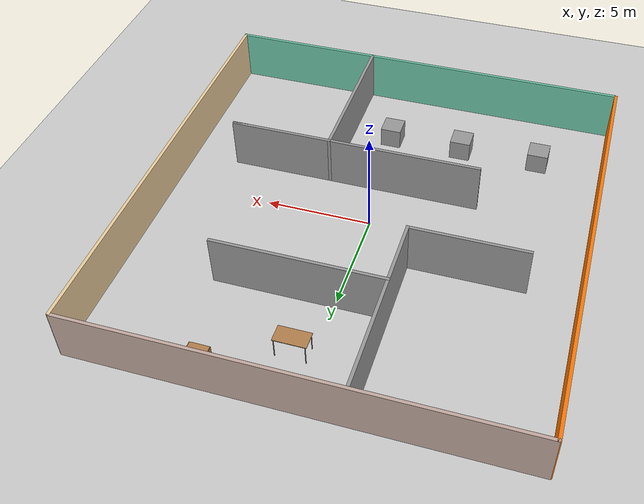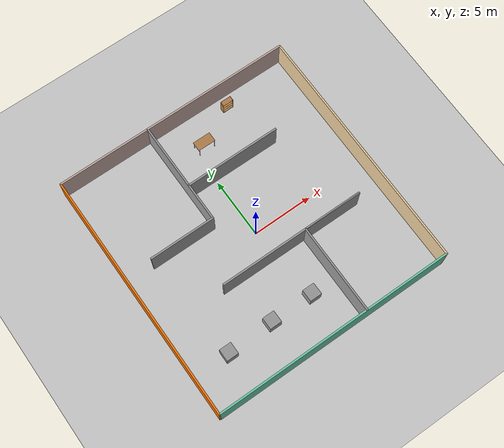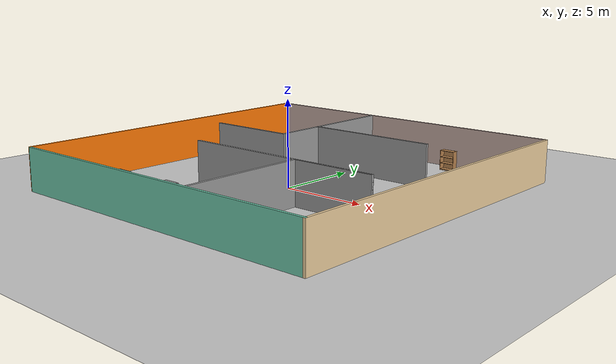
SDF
<sdf version="1.7">
 <world name="default">
  <light name="sun" type="directional">
   <pose>0 0 10 0 -0 0</pose>
   <diffuse>0.8 0.8 0.8 1</diffuse>
   <specular>0.2 0.2 0.2 1</specular>
   <attenuation>
    <range>1000</range>
    <constant>0.9</constant>
    <linear>0.01</linear>
    <quadratic>0.001</quadratic>
   </attenuation>
   <direction>-0.5 0.1 -0.9</direction>
   <spot><inner_angle>0</inner_angle><outer_angle>0</outer_angle><falloff>0</falloff></spot>
  </light>
  <model name="ground_plane">
   <static>1</static>
   <link name="link">
    <collision name="collision">
     <geometry><plane><normal>0 0 1</normal><size>100 100</size></plane></geometry>
     <surface>
      <contact><collide_bitmask>65535</collide_bitmask></contact>
      <friction><ode><mu>100</mu><mu2>50</mu2></ode></friction>
     </surface>
    </collision>
    <visual name="visual">
     <cast_shadows>0</cast_shadows>
     <geometry><plane><normal>0 0 1</normal><size>100 100</size></plane></geometry>
     <material>
      <script><uri>file://media/materials/scripts/gazebo.material</uri><name>Gazebo/Grey</name></script>
     </material>
    </visual>
   </link>
  </model>
  <gravity>0 0 -9.8</gravity>
  <magnetic_field>6e-06 2.3e-05 -4.2e-05</magnetic_field>
  <atmosphere type="adiabatic"/>
  <physics type="ode">
   <max_step_size>0.001</max_step_size>
   <real_time_factor>1</real_time_factor>
   <real_time_update_rate>1000</real_time_update_rate>
  </physics>
  <scene><ambient>0.4 0.4 0.4 1</ambient><background>0.7 0.7 0.7 1</background><shadows>1</shadows></scene>
  <spherical_coordinates>
   <surface_model>EARTH_WGS84</surface_model>
   <latitude_deg>0</latitude_deg>
   <longitude_deg>0</longitude_deg>
   <elevation>0</elevation>
   <heading_deg>0</heading_deg>
  </spherical_coordinates>
  <model name="updated_world">
   <pose>-0.057688 0.485307 0 0 -0 0</pose>
   <link name="Wall_0">
    <collision name="Wall_0_Collision">
     <geometry><box><size>20 0.15 2.5</size></box></geometry>
     <pose>0 0 1.25 0 -0 0</pose>
    </collision>
    <visual name="Wall_0_Visual">
     <pose>0 0 1.25 0 -0 0</pose>
     <geometry><box><size>20 0.15 2.5</size></box></geometry>
     <material>
      <script><uri>file://media/materials/scripts/gazebo.material</uri><name>Gazebo/Grey</name></script>
      <ambient>0.435294 0.796078 0.67451 1</ambient>
     </material>
     <meta><layer>0</layer></meta>
    </visual>
    <pose>0.049867 -10.3233 0 0 -0 3.14159</pose>
   </link>
   <link name="Wall_14">
    <collision name="Wall_14_Collision">
     <geometry><box><size>8.75 0.15 2.5</size></box></geometry>
     <pose>0 0 1.25 0 -0 0</pose>
    </collision>
    <visual name="Wall_14_Visual">
     <pose>0 0 1.25 0 -0 0</pose>
     <geometry><box><size>8.75 0.15 2.5</size></box></geometry>
     <material>
      <script><uri>file://media/materials/scripts/gazebo.material</uri><name>Gazebo/Grey</name></script>
      <ambient>1 1 1 1</ambient>
     </material>
     <meta><layer>0</layer></meta>
    </visual>
    <pose>-2.27724 5.9639 0 0 -0 -1.5708</pose>
   </link>
   <link name="Wall_15">
    <collision name="Wall_15_Collision">
     <geometry><box><size>5.5 0.15 2.5</size></box></geometry>
     <pose>0 0 1.25 0 -0 0</pose>
    </collision>
    <visual name="Wall_15_Visual">
     <pose>0 0 1.25 0 -0 0</pose>
     <geometry><box><size>5.5 0.15 2.5</size></box></geometry>
     <material>
      <script><uri>file://media/materials/scripts/gazebo.material</uri><name>Gazebo/Grey</name></script>
      <ambient>1 1 1 1</ambient>
     </material>
     <meta><layer>0</layer></meta>
    </visual>
    <pose>-4.95224 1.6639 0 0 -0 3.14159</pose>
   </link>
   <link name="Wall_17">
    <collision name="Wall_17_Collision">
     <geometry><box><size>7.5 0.15 2.5</size></box></geometry>
     <pose>0 0 1.25 0 -0 0</pose>
    </collision>
    <visual name="Wall_17_Visual">
     <pose>0 0 1.25 0 -0 0</pose>
     <geometry><box><size>7.5 0.15 2.5</size></box></geometry>
     <material>
      <script><uri>file://media/materials/scripts/gazebo.material</uri><name>Gazebo/Grey</name></script>
      <ambient>1 1 1 1</ambient>
     </material>
     <meta><layer>0</layer></meta>
    </visual>
    <pose>2.76804 -6.61141 0 0 -0 1.5708</pose>
   </link>
   <link name="Wall_18">
    <collision name="Wall_18_Collision">
     <geometry><box><size>5 0.15 2.5</size></box></geometry>
     <pose>0 0 1.25 0 -0 0</pose>
    </collision>
    <visual name="Wall_18_Visual">
     <pose>0 0 1.25 0 -0 0</pose>
     <geometry><box><size>5 0.15 2.5</size></box></geometry>
     <material>
      <script><uri>file://media/materials/scripts/gazebo.material</uri><name>Gazebo/Grey</name></script>
      <ambient>1 1 1 1</ambient>
     </material>
     <meta><layer>0</layer></meta>
    </visual>
    <pose>5.19304 -2.93641 0 0 -0 0</pose>
   </link>
   <link name="Wall_19">
    <collision name="Wall_19_Collision">
     <geometry><box><size>12.25 0.15 2.5</size></box></geometry>
     <pose>0 0 1.25 0 -0 0</pose>
    </collision>
    <visual name="Wall_19_Visual">
     <pose>0 0 1.25 0 -0 0</pose>
     <geometry><box><size>12.25 0.15 2.5</size></box></geometry>
     <material>
      <script><uri>file://media/materials/scripts/gazebo.material</uri><name>Gazebo/Grey</name></script>
      <ambient>1 1 1 1</ambient>
     </material>
     <meta><layer>0</layer></meta>
    </visual>
    <pose>1.56804 -2.93641 0 0 -0 3.14159</pose>
   </link>
   <link name="Wall_21">
    <collision name="Wall_21_Collision">
     <geometry><box><size>8 0.15 2.5</size></box></geometry>
     <pose>0 0 1.25 0 -0 0</pose>
    </collision>
    <visual name="Wall_21_Visual">
     <pose>0 0 1.25 0 -0 0</pose>
     <geometry><box><size>8 0.15 2.5</size></box></geometry>
     <material>
      <script><uri>file://media/materials/scripts/gazebo.material</uri><name>Gazebo/Grey</name></script>
      <ambient>1 1 1 1</ambient>
     </material>
     <meta><layer>0</layer></meta>
    </visual>
    <pose>1.64776 4.78792 0 0 -0 0</pose>
   </link>
   <link name="Wall_3">
    <collision name="Wall_3_Collision">
     <geometry><box><size>20.75 0.15 2.5</size></box></geometry>
     <pose>0 0 1.25 0 -0 0</pose>
    </collision>
    <visual name="Wall_3_Visual">
     <pose>0 0 1.25 0 -0 0</pose>
     <geometry><box><size>20.75 0.15 2.5</size></box></geometry>
     <material>
      <script><uri>file://media/materials/scripts/gazebo.material</uri><name>Gazebo/Grey</name></script>
      <ambient>0.996078 0.47451 0.0196078 1</ambient>
     </material>
     <meta><layer>0</layer></meta>
    </visual>
    <pose>-9.97487 0.013328 0 0 -0 1.5708</pose>
   </link>
   <link name="Wall_6">
    <collision name="Wall_6_Collision">
     <geometry><box><size>20.75 0.15 2.5</size></box></geometry>
     <pose>0 0 1.25 0 -0 0</pose>
    </collision>
    <visual name="Wall_6_Visual">
     <pose>0 0 1.25 0 -0 0</pose>
     <geometry><box><size>20.75 0.15 2.5</size></box></geometry>
     <material>
      <script><uri>file://media/materials/scripts/gazebo.material</uri><name>Gazebo/Grey</name></script>
      <ambient>0.921569 0.807843 0.615686 1</ambient>
     </material>
     <meta><layer>0</layer></meta>
    </visual>
    <pose>9.97487 -0.023349 0 0 -0 1.5708</pose>
   </link>
   <link name="Wall_8">
    <collision name="Wall_8_Collision">
     <geometry><box><size>20 0.15 2.5</size></box></geometry>
     <pose>0 0 1.25 0 -0 0</pose>
    </collision>
    <visual name="Wall_8_Visual">
     <pose>0 0 1.25 0 -0 0</pose>
     <geometry><box><size>20 0.15 2.5</size></box></geometry>
     <material>
      <script><uri>file://media/materials/scripts/gazebo.material</uri><name>Gazebo/Grey</name></script>
      <ambient>0.760784 0.662745 0.627451 1</ambient>
     </material>
     <meta><layer>0</layer></meta>
    </visual>
    <pose>-0.010091 10.3233 0 0 -0 3.14159</pose>
   </link>
   <static>1</static>
  </model>
  <model name="table">
   <static>1</static>
   <link name="link">
    <collision name="surface">
     <pose>0 0 1 0 -0 0</pose>
     <geometry><box><size>1.5 0.8 0.03</size></box></geometry>
     <surface><friction><ode><mu>0.6</mu><mu2>0.6</mu2></ode></friction></surface>
    </collision>
    <visual name="visual1">
     <pose>0 0 1 0 -0 0</pose>
     <geometry><box><size>1.5 0.8 0.03</size></box></geometry>
     <material>
      <script><uri>file://media/materials/scripts/gazebo.material</uri><name>Gazebo/Wood</name></script>
     </material>
    </visual>
    <collision name="front_left_leg">
     <pose>0.68 0.38 0.5 0 -0 0</pose>
     <geometry><cylinder><radius>0.02</radius><length>1</length></cylinder></geometry>
    </collision>
    <visual name="front_left_leg">
     <pose>0.68 0.38 0.5 0 -0 0</pose>
     <geometry><cylinder><radius>0.02</radius><length>1</length></cylinder></geometry>
     <material>
      <script><uri>file://media/materials/scripts/gazebo.material</uri><name>Gazebo/Grey</name></script>
     </material>
    </visual>
    <collision name="front_right_leg">
     <pose>0.68 -0.38 0.5 0 -0 0</pose>
     <geometry><cylinder><radius>0.02</radius><length>1</length></cylinder></geometry>
    </collision>
    <visual name="front_right_leg">
     <pose>0.68 -0.38 0.5 0 -0 0</pose>
     <geometry><cylinder><radius>0.02</radius><length>1</length></cylinder></geometry>
     <material>
      <script><uri>file://media/materials/scripts/gazebo.material</uri><name>Gazebo/Grey</name></script>
     </material>
    </visual>
    <collision name="back_right_leg">
     <pose>-0.68 -0.38 0.5 0 -0 0</pose>
     <geometry><cylinder><radius>0.02</radius><length>1</length></cylinder></geometry>
    </collision>
    <visual name="back_right_leg">
     <pose>-0.68 -0.38 0.5 0 -0 0</pose>
     <geometry><cylinder><radius>0.02</radius><length>1</length></cylinder></geometry>
     <material>
      <script><uri>file://media/materials/scripts/gazebo.material</uri><name>Gazebo/Grey</name></script>
     </material>
    </visual>
    <collision name="back_left_leg">
     <pose>-0.68 0.38 0.5 0 -0 0</pose>
     <geometry><cylinder><radius>0.02</radius><length>1</length></cylinder></geometry>
    </collision>
    <visual name="back_left_leg">
     <pose>-0.68 0.38 0.5 0 -0 0</pose>
     <geometry><cylinder><radius>0.02</radius><length>1</length></cylinder></geometry>
     <material>
      <script><uri>file://media/materials/scripts/gazebo.material</uri><name>Gazebo/Grey</name></script>
     </material>
    </visual>
   </link>
   <pose>0.868117 8.07876 0 0 -0 0</pose>
  </model>
  <model name="bookshelf">
   <static>1</static>
   <link name="link">
    <inertial><mass>1</mass></inertial>
    <collision name="back">
     <pose>0 0.005 0.6 0 -0 0</pose>
     <geometry><box><size>0.9 0.01 1.2</size></box></geometry>
    </collision>
    <visual name="visual1">
     <pose>0 0.005 0.6 0 -0 0</pose>
     <geometry><box><size>0.9 0.01 1.2</size></box></geometry>
     <material>
      <script><uri>file://media/materials/scripts/gazebo.material</uri><name>Gazebo/Wood</name></script>
     </material>
    </visual>
    <collision name="left_side">
     <pose>0.45 -0.195 0.6 0 -0 0</pose>
     <geometry><box><size>0.02 0.4 1.2</size></box></geometry>
    </collision>
    <visual name="visual2">
     <pose>0.45 -0.195 0.6 0 -0 0</pose>
     <geometry><box><size>0.02 0.4 1.2</size></box></geometry>
     <material>
      <script><uri>file://media/materials/scripts/gazebo.material</uri><name>Gazebo/Wood</name></script>
     </material>
    </visual>
    <collision name="right_side">
     <pose>-0.45 -0.195 0.6 0 -0 0</pose>
     <geometry><box><size>0.02 0.4 1.2</size></box></geometry>
    </collision>
    <visual name="visual3">
     <pose>-0.45 -0.195 0.6 0 -0 0</pose>
     <geometry><box><size>0.02 0.4 1.2</size></box></geometry>
     <material>
      <script><uri>file://media/materials/scripts/gazebo.material</uri><name>Gazebo/Wood</name></script>
     </material>
    </visual>
    <collision name="bottom">
     <pose>0 -0.195 0.03 0 -0 0</pose>
     <geometry><box><size>0.88 0.4 0.06</size></box></geometry>
    </collision>
    <visual name="visual4">
     <pose>0 -0.195 0.03 0 -0 0</pose>
     <geometry><box><size>0.88 0.4 0.06</size></box></geometry>
     <material>
      <script><uri>file://media/materials/scripts/gazebo.material</uri><name>Gazebo/Wood</name></script>
     </material>
    </visual>
    <collision name="top">
     <pose>0 -0.195 1.19 0 -0 0</pose>
     <geometry><box><size>0.88 0.4 0.02</size></box></geometry>
    </collision>
    <visual name="visual5">
     <pose>0 -0.195 1.19 0 -0 0</pose>
     <geometry><box><size>0.88 0.4 0.02</size></box></geometry>
     <material>
      <script><uri>file://media/materials/scripts/gazebo.material</uri><name>Gazebo/Wood</name></script>
     </material>
    </visual>
    <collision name="low_shelf">
     <pose>0 -0.195 0.43 0 -0 0</pose>
     <geometry><box><size>0.88 0.4 0.02</size></box></geometry>
    </collision>
    <visual name="visual6">
     <pose>0 -0.195 0.43 0 -0 0</pose>
     <geometry><box><size>0.88 0.4 0.02</size></box></geometry>
     <material>
      <script><uri>file://media/materials/scripts/gazebo.material</uri><name>Gazebo/Wood</name></script>
     </material>
    </visual>
    <collision name="high_shelf">
     <pose>0 -0.195 0.8 0 -0 0</pose>
     <geometry><box><size>0.88 0.4 0.02</size></box></geometry>
    </collision>
    <visual name="visual7">
     <pose>0 -0.195 0.8 0 -0 0</pose>
     <geometry><box><size>0.88 0.4 0.02</size></box></geometry>
     <material>
      <script><uri>file://media/materials/scripts/gazebo.material</uri><name>Gazebo/Wood</name></script>
     </material>
    </visual>
   </link>
   <pose>4.18919 9.9987 0 0 -0 0</pose>
  </model>
  <model name="unit_box_0">
   <pose>-6.87508 -6.38477 0.5 0 -0 0</pose>
   <link name="link">
    <inertial>
     <mass>1</mass>
     <inertia>
      <ixx>0.166667</ixx>
      <ixy>0</ixy>
      <ixz>0</ixz>
      <iyy>0.166667</iyy>
      <iyz>0</iyz>
      <izz>0.166667</izz>
     </inertia>
    </inertial>
    <collision name="collision"><geometry><box><size>1 1 1</size></box></geometry></collision>
    <visual name="visual">
     <geometry><box><size>1 1 1</size></box></geometry>
     <material>
      <script><name>Gazebo/Grey</name><uri>file://media/materials/scripts/gazebo.material</uri></script>
     </material>
    </visual>
   </link>
  </model>
  <model name="unit_box_1">
   <pose>-3.00856 -6.28352 0.5 0 -0 0</pose>
   <link name="link">
    <inertial>
     <mass>1</mass>
     <inertia>
      <ixx>0.166667</ixx>
      <ixy>0</ixy>
      <ixz>0</ixz>
      <iyy>0.166667</iyy>
      <iyz>0</iyz>
      <izz>0.166667</izz>
     </inertia>
    </inertial>
    <collision name="collision"><geometry><box><size>1 1 1</size></box></geometry></collision>
    <visual name="visual">
     <geometry><box><size>1 1 1</size></box></geometry>
     <material>
      <script><name>Gazebo/Grey</name><uri>file://media/materials/scripts/gazebo.material</uri></script>
     </material>
    </visual>
   </link>
  </model>
  <model name="unit_box_2">
   <pose>0.578438 -6.28051 0.5 0 -0 0</pose>
   <link name="link">
    <inertial>
     <mass>1</mass>
     <inertia>
      <ixx>0.166667</ixx>
      <ixy>0</ixy>
      <ixz>0</ixz>
      <iyy>0.166667</iyy>
      <iyz>0</iyz>
      <izz>0.166667</izz>
     </inertia>
    </inertial>
    <collision name="collision"><geometry><box><size>1 1 1</size></box></geometry></collision>
    <visual name="visual">
     <geometry><box><size>1 1 1</size></box></geometry>
     <material>
      <script><name>Gazebo/Grey</name><uri>file://media/materials/scripts/gazebo.material</uri></script>
     </material>
    </visual>
   </link>
  </model>
 </world>
</sdf>
